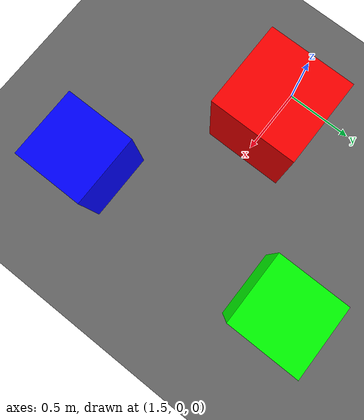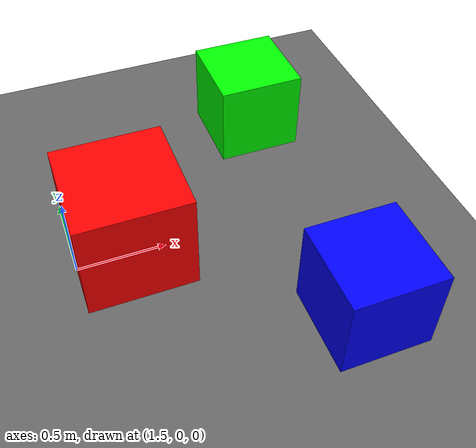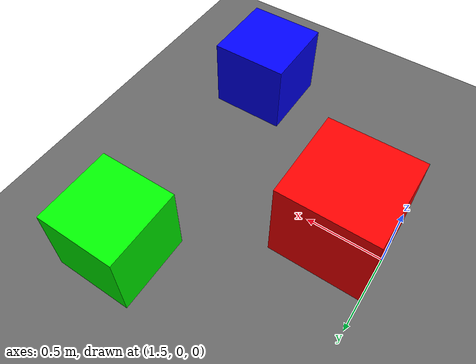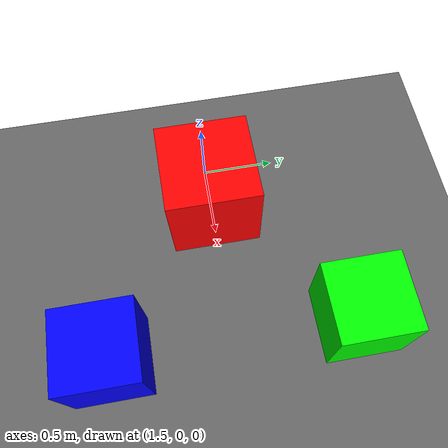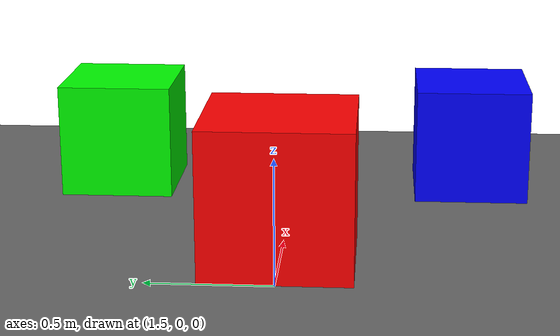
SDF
<?xml version="1.0"?>

<sdf version="1.6">

  <world name="four_car_world">

    <!-- ================= 地面 ================= -->

    <model name="ground_plane">

      <static>true</static>

      <link name="link">

        <collision name="collision">

          <geometry>

            <plane>

              <normal>0 0 1</normal>

              <size>100 100</size>

            </plane>

          </geometry>

        </collision>

        <visual name="visual">

          <geometry>

            <plane>

              <normal>0 0 1</normal>

              <size>100 100</size>

            </plane>

          </geometry>

          <material>

            <ambient>0.4 0.4 0.4 1</ambient>

            <diffuse>0.4 0.4 0.4 1</diffuse>

          </material>

        </visual>

      </link>

    </model>

    <!-- ================= 光源 ================= -->

    <light name="sun" type="directional">

      <cast_shadows>true</cast_shadows>

      <pose>0 0 10 0 0 0</pose>

      <diffuse>0.8 0.8 0.8 1</diffuse>

      <specular>0.1 0.1 0.1 1</specular>

      <direction>0.1 0.1 -1</direction>

    </light>

    <!-- 障碍物1：小车正前方 -->

    <model name="obstacle_1">

      <static>true</static>

      <pose>1.8 0 0.3 0 0 0</pose>

      <link name="link">

        <collision name="collision">

          <geometry>

            <box>

              <size>0.6 0.6 0.6</size>

            </box>

          </geometry>

        </collision>

        <visual name="visual">

          <geometry>

            <box>

              <size>0.6 0.6 0.6</size>

            </box>

          </geometry>

          <material>

            <ambient>1 0 0 1</ambient>

            <diffuse>1 0 0 1</diffuse>

          </material>

        </visual>

      </link>

    </model>

    <!-- 障碍物2：右前方 -->

    <model name="obstacle_2">

      <static>true</static>

      <pose>2.8 -0.8 0.25 0 0 0</pose>

      <link name="link">

        <collision name="collision">

          <geometry>

            <box>

              <size>0.5 0.5 0.5</size>

            </box>

          </geometry>

        </collision>

        <visual name="visual">

          <geometry>

            <box>

              <size>0.5 0.5 0.5</size>

            </box>

          </geometry>

          <material>

            <ambient>0 0 1 1</ambient>

            <diffuse>0 0 1 1</diffuse>

          </material>

        </visual>

      </link>

    </model>

    <!-- 障碍物3：左前方 -->

    <model name="obstacle_3">

      <static>true</static>

      <pose>2.8 0.8 0.25 0 0 0</pose>

      <link name="link">

        <collision name="collision">

          <geometry>

            <box>

              <size>0.5 0.5 0.5</size>

            </box>

          </geometry>

        </collision>

        <visual name="visual">

          <geometry>

            <box>

              <size>0.5 0.5 0.5</size>

            </box>

          </geometry>

          <material>

            <ambient>0 1 0 1</ambient>

            <diffuse>0 1 0 1</diffuse>

          </material>

        </visual>

      </link>

    </model>

  </world>

</sdf>
